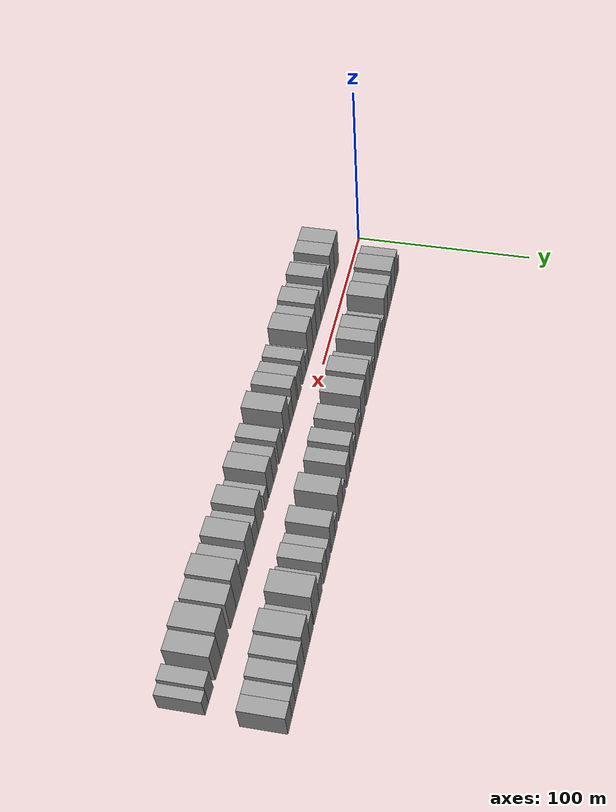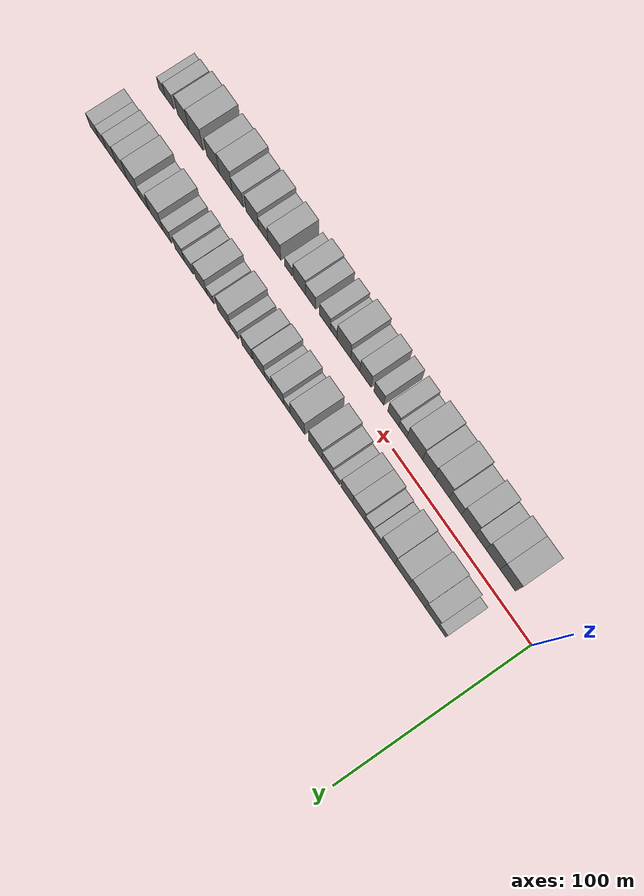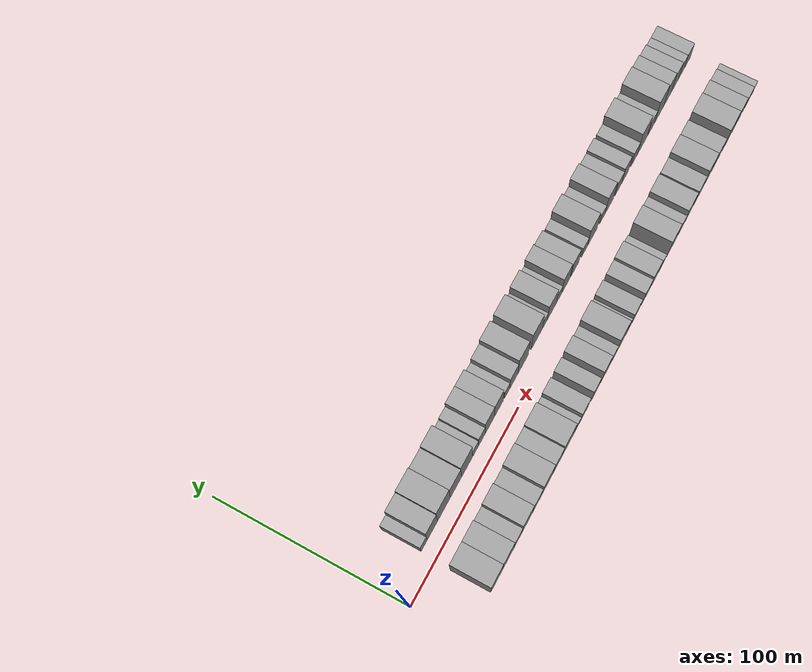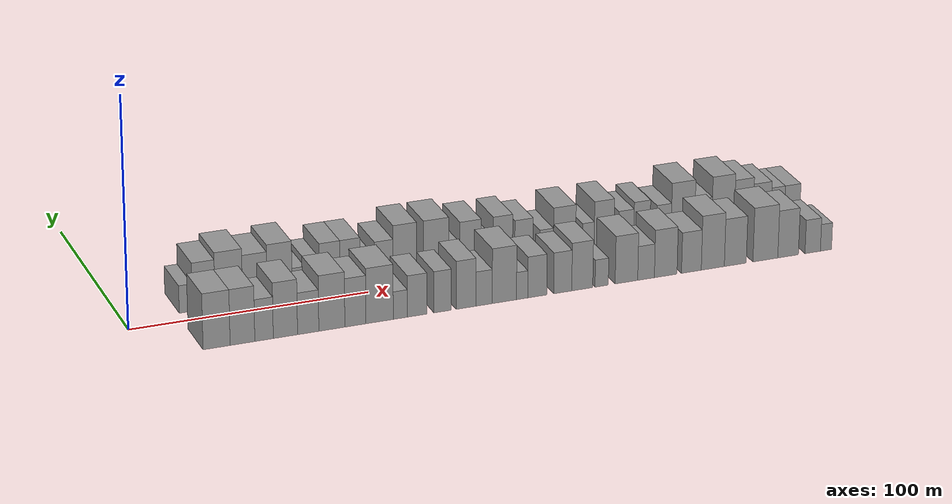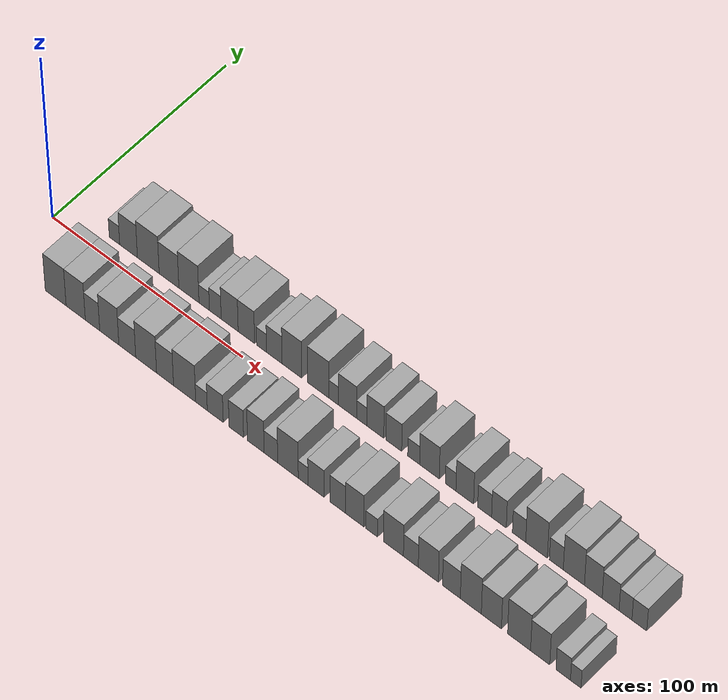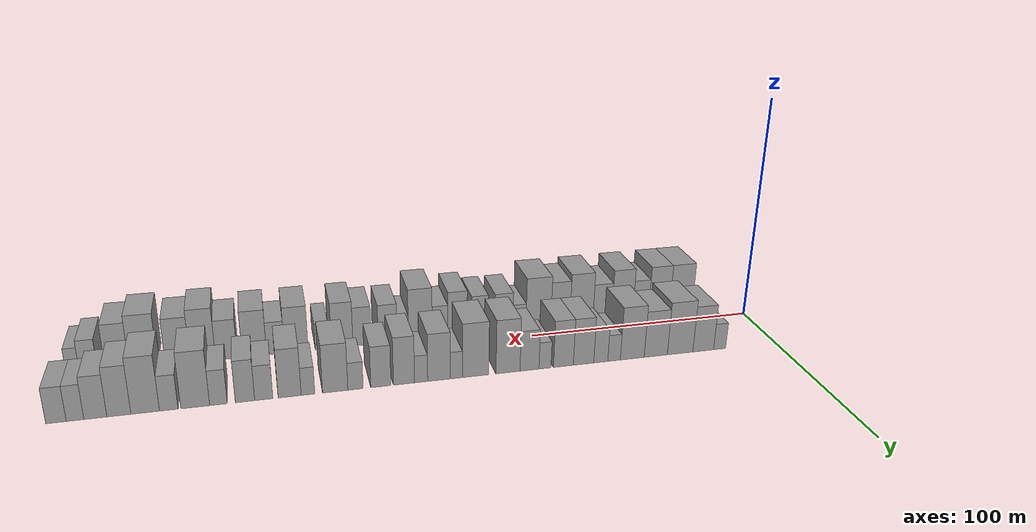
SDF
<sdf version="1.6">
 <world name="default">
  <scene>
   <sky><clouds><speed>12</speed></clouds></sky>
   <ambient>0.4 0.4 0.4 1</ambient>
   <background>0.7 0.7 0.7 1</background>
   <shadows>1</shadows>
  </scene>
  <gravity>0 0 -9.8066</gravity>
  <magnetic_field>6e-06 2.3e-05 -4.2e-05</magnetic_field>
  <physics default="0" name="default_physics" type="ode">
   <ode>
    <solver>
     <type>quick</type>
     <iters>10</iters>
     <sor>1.0</sor>
     <use_dynamic_moi_rescaling>0</use_dynamic_moi_rescaling>
    </solver>
    <constraints>
     <cfm>0</cfm>
     <erp>0.2</erp>
     <contact_max_correcting_vel>100</contact_max_correcting_vel>
     <contact_surface_layer>0.001</contact_surface_layer>
    </constraints>
   </ode>
   <max_step_size>0.004</max_step_size>
   <real_time_factor>1</real_time_factor>
   <real_time_update_rate>250</real_time_update_rate>
  </physics>
  <light name="sun" type="directional">
   <pose>0 0 10 0 0 0</pose>
   <diffuse>0.8 0.8 0.8 1</diffuse>
   <specular>0.2 0.2 0.2 1</specular>
   <attenuation>
    <range>1000</range>
    <constant>0.9</constant>
    <linear>0.01</linear>
    <quadratic>0.001</quadratic>
   </attenuation>
   <direction>-0.5 0.1 -0.9</direction>
  </light>
  <model name="building_1">
   <static>1</static>
   <pose>25.7663 17.5000 0 0.000000 0.000000 1.570796</pose>
   <link name="link">
    <pose>0 0 6.00 0 0 0</pose>
    <collision name="collision"><geometry><box><size>20.0000 5.5326 12.0000</size></box></geometry></collision>
    <visual name="visual">
     <cast_shadows>0</cast_shadows>
     <geometry><box><size>20.0000 5.5326 12.0000</size></box></geometry>
     <material>
      <script>
       <uri>model://grey_wall/materials/scripts</uri>
       <uri>model://grey_wall/materials/textures</uri>
       <name>vrc/grey_wall</name>
      </script>
     </material>
    </visual>
   </link>
  </model>
  <model name="building_2">
   <static>1</static>
   <pose>33.2285 17.5000 0 0.000000 0.000000 1.570796</pose>
   <link name="link">
    <pose>0 0 10.50 0 0 0</pose>
    <collision name="collision"><geometry><box><size>20.0000 9.3917 21.0000</size></box></geometry></collision>
    <visual name="visual">
     <cast_shadows>0</cast_shadows>
     <geometry><box><size>20.0000 9.3917 21.0000</size></box></geometry>
     <material>
      <script>
       <uri>model://grey_wall/materials/scripts</uri>
       <uri>model://grey_wall/materials/textures</uri>
       <name>vrc/grey_wall</name>
      </script>
     </material>
    </visual>
   </link>
  </model>
  <model name="building_3">
   <static>1</static>
   <pose>43.6624 17.5000 0 0.000000 0.000000 1.570796</pose>
   <link name="link">
    <pose>0 0 12.00 0 0 0</pose>
    <collision name="collision"><geometry><box><size>20.0000 11.4763 24.0000</size></box></geometry></collision>
    <visual name="visual">
     <cast_shadows>0</cast_shadows>
     <geometry><box><size>20.0000 11.4763 24.0000</size></box></geometry>
     <material>
      <script>
       <uri>model://grey_wall/materials/scripts</uri>
       <uri>model://grey_wall/materials/textures</uri>
       <name>vrc/grey_wall</name>
      </script>
     </material>
    </visual>
   </link>
  </model>
  <model name="building_4">
   <static>1</static>
   <pose>54.5716 17.5000 0 0.000000 0.000000 1.570796</pose>
   <link name="link">
    <pose>0 0 10.50 0 0 0</pose>
    <collision name="collision"><geometry><box><size>20.0000 10.3420 21.0000</size></box></geometry></collision>
    <visual name="visual">
     <cast_shadows>0</cast_shadows>
     <geometry><box><size>20.0000 10.3420 21.0000</size></box></geometry>
     <material>
      <script>
       <uri>model://grey_wall/materials/scripts</uri>
       <uri>model://grey_wall/materials/textures</uri>
       <name>vrc/grey_wall</name>
      </script>
     </material>
    </visual>
   </link>
  </model>
  <model name="building_5">
   <static>1</static>
   <pose>65.0134 17.5000 0 0.000000 0.000000 1.570796</pose>
   <link name="link">
    <pose>0 0 12.00 0 0 0</pose>
    <collision name="collision"><geometry><box><size>20.0000 10.5416 24.0000</size></box></geometry></collision>
    <visual name="visual">
     <cast_shadows>0</cast_shadows>
     <geometry><box><size>20.0000 10.5416 24.0000</size></box></geometry>
     <material>
      <script>
       <uri>model://grey_wall/materials/scripts</uri>
       <uri>model://grey_wall/materials/textures</uri>
       <name>vrc/grey_wall</name>
      </script>
     </material>
    </visual>
   </link>
  </model>
  <model name="building_6">
   <static>1</static>
   <pose>73.0153 17.5000 0 0.000000 0.000000 1.570796</pose>
   <link name="link">
    <pose>0 0 6.00 0 0 0</pose>
    <collision name="collision"><geometry><box><size>20.0000 5.4623 12.0000</size></box></geometry></collision>
    <visual name="visual">
     <cast_shadows>0</cast_shadows>
     <geometry><box><size>20.0000 5.4623 12.0000</size></box></geometry>
     <material>
      <script>
       <uri>model://grey_wall/materials/scripts</uri>
       <uri>model://grey_wall/materials/textures</uri>
       <name>vrc/grey_wall</name>
      </script>
     </material>
    </visual>
   </link>
  </model>
  <model name="building_7">
   <static>1</static>
   <pose>78.8042 17.5000 0 0.000000 0.000000 1.570796</pose>
   <link name="link">
    <pose>0 0 7.50 0 0 0</pose>
    <collision name="collision"><geometry><box><size>20.0000 6.1155 15.0000</size></box></geometry></collision>
    <visual name="visual">
     <cast_shadows>0</cast_shadows>
     <geometry><box><size>20.0000 6.1155 15.0000</size></box></geometry>
     <material>
      <script>
       <uri>model://grey_wall/materials/scripts</uri>
       <uri>model://grey_wall/materials/textures</uri>
       <name>vrc/grey_wall</name>
      </script>
     </material>
    </visual>
   </link>
  </model>
  <model name="building_8">
   <static>1</static>
   <pose>86.2754 17.5000 0 0.000000 0.000000 1.570796</pose>
   <link name="link">
    <pose>0 0 10.50 0 0 0</pose>
    <collision name="collision"><geometry><box><size>20.0000 8.8268 21.0000</size></box></geometry></collision>
    <visual name="visual">
     <cast_shadows>0</cast_shadows>
     <geometry><box><size>20.0000 8.8268 21.0000</size></box></geometry>
     <material>
      <script>
       <uri>model://grey_wall/materials/scripts</uri>
       <uri>model://grey_wall/materials/textures</uri>
       <name>vrc/grey_wall</name>
      </script>
     </material>
    </visual>
   </link>
  </model>
  <model name="building_9">
   <static>1</static>
   <pose>94.9428 17.5000 0 0.000000 0.000000 1.570796</pose>
   <link name="link">
    <pose>0 0 10.50 0 0 0</pose>
    <collision name="collision"><geometry><box><size>20.0000 8.5081 21.0000</size></box></geometry></collision>
    <visual name="visual">
     <cast_shadows>0</cast_shadows>
     <geometry><box><size>20.0000 8.5081 21.0000</size></box></geometry>
     <material>
      <script>
       <uri>model://grey_wall/materials/scripts</uri>
       <uri>model://grey_wall/materials/textures</uri>
       <name>vrc/grey_wall</name>
      </script>
     </material>
    </visual>
   </link>
  </model>
  <model name="building_10">
   <static>1</static>
   <pose>102.7801 17.5000 0 0.000000 0.000000 1.570796</pose>
   <link name="link">
    <pose>0 0 6.00 0 0 0</pose>
    <collision name="collision"><geometry><box><size>20.0000 5.1664 12.0000</size></box></geometry></collision>
    <visual name="visual">
     <cast_shadows>0</cast_shadows>
     <geometry><box><size>20.0000 5.1664 12.0000</size></box></geometry>
     <material>
      <script>
       <uri>model://grey_wall/materials/scripts</uri>
       <uri>model://grey_wall/materials/textures</uri>
       <name>vrc/grey_wall</name>
      </script>
     </material>
    </visual>
   </link>
  </model>
  <model name="building_11">
   <static>1</static>
   <pose>109.3656 17.5000 0 0.000000 0.000000 1.570796</pose>
   <link name="link">
    <pose>0 0 9.00 0 0 0</pose>
    <collision name="collision"><geometry><box><size>20.0000 8.0046 18.0000</size></box></geometry></collision>
    <visual name="visual">
     <cast_shadows>0</cast_shadows>
     <geometry><box><size>20.0000 8.0046 18.0000</size></box></geometry>
     <material>
      <script>
       <uri>model://grey_wall/materials/scripts</uri>
       <uri>model://grey_wall/materials/textures</uri>
       <name>vrc/grey_wall</name>
      </script>
     </material>
    </visual>
   </link>
  </model>
  <model name="building_12">
   <static>1</static>
   <pose>118.4052 17.5000 0 0.000000 0.000000 1.570796</pose>
   <link name="link">
    <pose>0 0 12.00 0 0 0</pose>
    <collision name="collision"><geometry><box><size>20.0000 10.0746 24.0000</size></box></geometry></collision>
    <visual name="visual">
     <cast_shadows>0</cast_shadows>
     <geometry><box><size>20.0000 10.0746 24.0000</size></box></geometry>
     <material>
      <script>
       <uri>model://grey_wall/materials/scripts</uri>
       <uri>model://grey_wall/materials/textures</uri>
       <name>vrc/grey_wall</name>
      </script>
     </material>
    </visual>
   </link>
  </model>
  <model name="building_13">
   <static>1</static>
   <pose>131.8891 17.5000 0 0.000000 0.000000 1.570796</pose>
   <link name="link">
    <pose>0 0 12.00 0 0 0</pose>
    <collision name="collision"><geometry><box><size>20.0000 10.8932 24.0000</size></box></geometry></collision>
    <visual name="visual">
     <cast_shadows>0</cast_shadows>
     <geometry><box><size>20.0000 10.8932 24.0000</size></box></geometry>
     <material>
      <script>
       <uri>model://grey_wall/materials/scripts</uri>
       <uri>model://grey_wall/materials/textures</uri>
       <name>vrc/grey_wall</name>
      </script>
     </material>
    </visual>
   </link>
  </model>
  <model name="building_14">
   <static>1</static>
   <pose>139.7885 17.5000 0 0.000000 0.000000 1.570796</pose>
   <link name="link">
    <pose>0 0 6.00 0 0 0</pose>
    <collision name="collision"><geometry><box><size>20.0000 4.9057 12.0000</size></box></geometry></collision>
    <visual name="visual">
     <cast_shadows>0</cast_shadows>
     <geometry><box><size>20.0000 4.9057 12.0000</size></box></geometry>
     <material>
      <script>
       <uri>model://grey_wall/materials/scripts</uri>
       <uri>model://grey_wall/materials/textures</uri>
       <name>vrc/grey_wall</name>
      </script>
     </material>
    </visual>
   </link>
  </model>
  <model name="building_15">
   <static>1</static>
   <pose>146.8472 17.5000 0 0.000000 0.000000 1.570796</pose>
   <link name="link">
    <pose>0 0 10.50 0 0 0</pose>
    <collision name="collision"><geometry><box><size>20.0000 9.2116 21.0000</size></box></geometry></collision>
    <visual name="visual">
     <cast_shadows>0</cast_shadows>
     <geometry><box><size>20.0000 9.2116 21.0000</size></box></geometry>
     <material>
      <script>
       <uri>model://grey_wall/materials/scripts</uri>
       <uri>model://grey_wall/materials/textures</uri>
       <name>vrc/grey_wall</name>
      </script>
     </material>
    </visual>
   </link>
  </model>
  <model name="building_16">
   <static>1</static>
   <pose>154.1095 17.5000 0 0.000000 0.000000 1.570796</pose>
   <link name="link">
    <pose>0 0 6.00 0 0 0</pose>
    <collision name="collision"><geometry><box><size>20.0000 5.3130 12.0000</size></box></geometry></collision>
    <visual name="visual">
     <cast_shadows>0</cast_shadows>
     <geometry><box><size>20.0000 5.3130 12.0000</size></box></geometry>
     <material>
      <script>
       <uri>model://grey_wall/materials/scripts</uri>
       <uri>model://grey_wall/materials/textures</uri>
       <name>vrc/grey_wall</name>
      </script>
     </material>
    </visual>
   </link>
  </model>
  <model name="building_17">
   <static>1</static>
   <pose>160.9851 17.5000 0 0.000000 0.000000 1.570796</pose>
   <link name="link">
    <pose>0 0 10.50 0 0 0</pose>
    <collision name="collision"><geometry><box><size>20.0000 8.4382 21.0000</size></box></geometry></collision>
    <visual name="visual">
     <cast_shadows>0</cast_shadows>
     <geometry><box><size>20.0000 8.4382 21.0000</size></box></geometry>
     <material>
      <script>
       <uri>model://grey_wall/materials/scripts</uri>
       <uri>model://grey_wall/materials/textures</uri>
       <name>vrc/grey_wall</name>
      </script>
     </material>
    </visual>
   </link>
  </model>
  <model name="building_18">
   <static>1</static>
   <pose>170.2127 17.5000 0 0.000000 0.000000 1.570796</pose>
   <link name="link">
    <pose>0 0 9.00 0 0 0</pose>
    <collision name="collision"><geometry><box><size>20.0000 8.0170 18.0000</size></box></geometry></collision>
    <visual name="visual">
     <cast_shadows>0</cast_shadows>
     <geometry><box><size>20.0000 8.0170 18.0000</size></box></geometry>
     <material>
      <script>
       <uri>model://grey_wall/materials/scripts</uri>
       <uri>model://grey_wall/materials/textures</uri>
       <name>vrc/grey_wall</name>
      </script>
     </material>
    </visual>
   </link>
  </model>
  <model name="building_19">
   <static>1</static>
   <pose>180.2199 17.5000 0 0.000000 0.000000 1.570796</pose>
   <link name="link">
    <pose>0 0 6.00 0 0 0</pose>
    <collision name="collision"><geometry><box><size>20.0000 5.9976 12.0000</size></box></geometry></collision>
    <visual name="visual">
     <cast_shadows>0</cast_shadows>
     <geometry><box><size>20.0000 5.9976 12.0000</size></box></geometry>
     <material>
      <script>
       <uri>model://grey_wall/materials/scripts</uri>
       <uri>model://grey_wall/materials/textures</uri>
       <name>vrc/grey_wall</name>
      </script>
     </material>
    </visual>
   </link>
  </model>
  <model name="building_20">
   <static>1</static>
   <pose>188.1615 17.5000 0 0.000000 0.000000 1.570796</pose>
   <link name="link">
    <pose>0 0 10.50 0 0 0</pose>
    <collision name="collision"><geometry><box><size>20.0000 9.8854 21.0000</size></box></geometry></collision>
    <visual name="visual">
     <cast_shadows>0</cast_shadows>
     <geometry><box><size>20.0000 9.8854 21.0000</size></box></geometry>
     <material>
      <script>
       <uri>model://grey_wall/materials/scripts</uri>
       <uri>model://grey_wall/materials/textures</uri>
       <name>vrc/grey_wall</name>
      </script>
     </material>
    </visual>
   </link>
  </model>
  <model name="building_21">
   <static>1</static>
   <pose>198.7292 17.5000 0 0.000000 0.000000 1.570796</pose>
   <link name="link">
    <pose>0 0 6.00 0 0 0</pose>
    <collision name="collision"><geometry><box><size>20.0000 5.2500 12.0000</size></box></geometry></collision>
    <visual name="visual">
     <cast_shadows>0</cast_shadows>
     <geometry><box><size>20.0000 5.2500 12.0000</size></box></geometry>
     <material>
      <script>
       <uri>model://grey_wall/materials/scripts</uri>
       <uri>model://grey_wall/materials/textures</uri>
       <name>vrc/grey_wall</name>
      </script>
     </material>
    </visual>
   </link>
  </model>
  <model name="building_22">
   <static>1</static>
   <pose>205.7649 17.5000 0 0.000000 0.000000 1.570796</pose>
   <link name="link">
    <pose>0 0 10.50 0 0 0</pose>
    <collision name="collision"><geometry><box><size>20.0000 8.8215 21.0000</size></box></geometry></collision>
    <visual name="visual">
     <cast_shadows>0</cast_shadows>
     <geometry><box><size>20.0000 8.8215 21.0000</size></box></geometry>
     <material>
      <script>
       <uri>model://grey_wall/materials/scripts</uri>
       <uri>model://grey_wall/materials/textures</uri>
       <name>vrc/grey_wall</name>
      </script>
     </material>
    </visual>
   </link>
  </model>
  <model name="building_23">
   <static>1</static>
   <pose>215.6237 17.5000 0 0.000000 0.000000 1.570796</pose>
   <link name="link">
    <pose>0 0 7.50 0 0 0</pose>
    <collision name="collision"><geometry><box><size>20.0000 6.8962 15.0000</size></box></geometry></collision>
    <visual name="visual">
     <cast_shadows>0</cast_shadows>
     <geometry><box><size>20.0000 6.8962 15.0000</size></box></geometry>
     <material>
      <script>
       <uri>model://grey_wall/materials/scripts</uri>
       <uri>model://grey_wall/materials/textures</uri>
       <name>vrc/grey_wall</name>
      </script>
     </material>
    </visual>
   </link>
  </model>
  <model name="building_24">
   <static>1</static>
   <pose>222.7082 17.5000 0 0.000000 0.000000 1.570796</pose>
   <link name="link">
    <pose>0 0 9.00 0 0 0</pose>
    <collision name="collision"><geometry><box><size>20.0000 7.2728 18.0000</size></box></geometry></collision>
    <visual name="visual">
     <cast_shadows>0</cast_shadows>
     <geometry><box><size>20.0000 7.2728 18.0000</size></box></geometry>
     <material>
      <script>
       <uri>model://grey_wall/materials/scripts</uri>
       <uri>model://grey_wall/materials/textures</uri>
       <name>vrc/grey_wall</name>
      </script>
     </material>
    </visual>
   </link>
  </model>
  <model name="building_25">
   <static>1</static>
   <pose>232.6329 17.5000 0 0.000000 0.000000 1.570796</pose>
   <link name="link">
    <pose>0 0 7.50 0 0 0</pose>
    <collision name="collision"><geometry><box><size>20.0000 6.5765 15.0000</size></box></geometry></collision>
    <visual name="visual">
     <cast_shadows>0</cast_shadows>
     <geometry><box><size>20.0000 6.5765 15.0000</size></box></geometry>
     <material>
      <script>
       <uri>model://grey_wall/materials/scripts</uri>
       <uri>model://grey_wall/materials/textures</uri>
       <name>vrc/grey_wall</name>
      </script>
     </material>
    </visual>
   </link>
  </model>
  <model name="building_26">
   <static>1</static>
   <pose>241.2340 17.5000 0 0.000000 0.000000 1.570796</pose>
   <link name="link">
    <pose>0 0 12.00 0 0 0</pose>
    <collision name="collision"><geometry><box><size>20.0000 10.6257 24.0000</size></box></geometry></collision>
    <visual name="visual">
     <cast_shadows>0</cast_shadows>
     <geometry><box><size>20.0000 10.6257 24.0000</size></box></geometry>
     <material>
      <script>
       <uri>model://grey_wall/materials/scripts</uri>
       <uri>model://grey_wall/materials/textures</uri>
       <name>vrc/grey_wall</name>
      </script>
     </material>
    </visual>
   </link>
  </model>
  <model name="building_27">
   <static>1</static>
   <pose>250.9435 17.5000 0 0.000000 0.000000 1.570796</pose>
   <link name="link">
    <pose>0 0 7.50 0 0 0</pose>
    <collision name="collision"><geometry><box><size>20.0000 6.7933 15.0000</size></box></geometry></collision>
    <visual name="visual">
     <cast_shadows>0</cast_shadows>
     <geometry><box><size>20.0000 6.7933 15.0000</size></box></geometry>
     <material>
      <script>
       <uri>model://grey_wall/materials/scripts</uri>
       <uri>model://grey_wall/materials/textures</uri>
       <name>vrc/grey_wall</name>
      </script>
     </material>
    </visual>
   </link>
  </model>
  <model name="building_28">
   <static>1</static>
   <pose>259.5029 17.5000 0 0.000000 0.000000 1.570796</pose>
   <link name="link">
    <pose>0 0 12.00 0 0 0</pose>
    <collision name="collision"><geometry><box><size>20.0000 10.3254 24.0000</size></box></geometry></collision>
    <visual name="visual">
     <cast_shadows>0</cast_shadows>
     <geometry><box><size>20.0000 10.3254 24.0000</size></box></geometry>
     <material>
      <script>
       <uri>model://grey_wall/materials/scripts</uri>
       <uri>model://grey_wall/materials/textures</uri>
       <name>vrc/grey_wall</name>
      </script>
     </material>
    </visual>
   </link>
  </model>
  <model name="building_29">
   <static>1</static>
   <pose>268.9678 17.5000 0 0.000000 0.000000 1.570796</pose>
   <link name="link">
    <pose>0 0 10.50 0 0 0</pose>
    <collision name="collision"><geometry><box><size>20.0000 8.6045 21.0000</size></box></geometry></collision>
    <visual name="visual">
     <cast_shadows>0</cast_shadows>
     <geometry><box><size>20.0000 8.6045 21.0000</size></box></geometry>
     <material>
      <script>
       <uri>model://grey_wall/materials/scripts</uri>
       <uri>model://grey_wall/materials/textures</uri>
       <name>vrc/grey_wall</name>
      </script>
     </material>
    </visual>
   </link>
  </model>
  <model name="building_30">
   <static>1</static>
   <pose>277.3589 17.5000 0 0.000000 0.000000 1.570796</pose>
   <link name="link">
    <pose>0 0 9.00 0 0 0</pose>
    <collision name="collision"><geometry><box><size>20.0000 8.1776 18.0000</size></box></geometry></collision>
    <visual name="visual">
     <cast_shadows>0</cast_shadows>
     <geometry><box><size>20.0000 8.1776 18.0000</size></box></geometry>
     <material>
      <script>
       <uri>model://grey_wall/materials/scripts</uri>
       <uri>model://grey_wall/materials/textures</uri>
       <name>vrc/grey_wall</name>
      </script>
     </material>
    </visual>
   </link>
  </model>
  <model name="building_31">
   <static>1</static>
   <pose>284.5624 17.5000 0 0.000000 0.000000 1.570796</pose>
   <link name="link">
    <pose>0 0 7.50 0 0 0</pose>
    <collision name="collision"><geometry><box><size>20.0000 6.2294 15.0000</size></box></geometry></collision>
    <visual name="visual">
     <cast_shadows>0</cast_shadows>
     <geometry><box><size>20.0000 6.2294 15.0000</size></box></geometry>
     <material>
      <script>
       <uri>model://grey_wall/materials/scripts</uri>
       <uri>model://grey_wall/materials/textures</uri>
       <name>vrc/grey_wall</name>
      </script>
     </material>
    </visual>
   </link>
  </model>
  <model name="building_32">
   <static>1</static>
   <pose>291.2573 17.5000 0 0.000000 0.000000 1.570796</pose>
   <link name="link">
    <pose>0 0 7.50 0 0 0</pose>
    <collision name="collision"><geometry><box><size>20.0000 7.1604 15.0000</size></box></geometry></collision>
    <visual name="visual">
     <cast_shadows>0</cast_shadows>
     <geometry><box><size>20.0000 7.1604 15.0000</size></box></geometry>
     <material>
      <script>
       <uri>model://grey_wall/materials/scripts</uri>
       <uri>model://grey_wall/materials/textures</uri>
       <name>vrc/grey_wall</name>
      </script>
     </material>
    </visual>
   </link>
  </model>
  <model name="building_33">
   <static>1</static>
   <pose>27.5163 -17.5000 0 0.000000 0.000000 1.570796</pose>
   <link name="link">
    <pose>0 0 12.00 0 0 0</pose>
    <collision name="collision"><geometry><box><size>20.0000 11.0327 24.0000</size></box></geometry></collision>
    <visual name="visual">
     <cast_shadows>0</cast_shadows>
     <geometry><box><size>20.0000 11.0327 24.0000</size></box></geometry>
     <material>
      <script>
       <uri>model://grey_wall/materials/scripts</uri>
       <uri>model://grey_wall/materials/textures</uri>
       <name>vrc/grey_wall</name>
      </script>
     </material>
    </visual>
   </link>
  </model>
  <model name="building_34">
   <static>1</static>
   <pose>38.0993 -17.5000 0 0.000000 0.000000 1.570796</pose>
   <link name="link">
    <pose>0 0 12.00 0 0 0</pose>
    <collision name="collision"><geometry><box><size>20.0000 10.1332 24.0000</size></box></geometry></collision>
    <visual name="visual">
     <cast_shadows>0</cast_shadows>
     <geometry><box><size>20.0000 10.1332 24.0000</size></box></geometry>
     <material>
      <script>
       <uri>model://grey_wall/materials/scripts</uri>
       <uri>model://grey_wall/materials/textures</uri>
       <name>vrc/grey_wall</name>
      </script>
     </material>
    </visual>
   </link>
  </model>
  <model name="building_35">
   <static>1</static>
   <pose>46.9621 -17.5000 0 0.000000 0.000000 1.570796</pose>
   <link name="link">
    <pose>0 0 9.00 0 0 0</pose>
    <collision name="collision"><geometry><box><size>20.0000 7.5925 18.0000</size></box></geometry></collision>
    <visual name="visual">
     <cast_shadows>0</cast_shadows>
     <geometry><box><size>20.0000 7.5925 18.0000</size></box></geometry>
     <material>
      <script>
       <uri>model://grey_wall/materials/scripts</uri>
       <uri>model://grey_wall/materials/textures</uri>
       <name>vrc/grey_wall</name>
      </script>
     </material>
    </visual>
   </link>
  </model>
  <model name="building_36">
   <static>1</static>
   <pose>55.7701 -17.5000 0 0.000000 0.000000 1.570796</pose>
   <link name="link">
    <pose>0 0 12.00 0 0 0</pose>
    <collision name="collision"><geometry><box><size>20.0000 10.0235 24.0000</size></box></geometry></collision>
    <visual name="visual">
     <cast_shadows>0</cast_shadows>
     <geometry><box><size>20.0000 10.0235 24.0000</size></box></geometry>
     <material>
      <script>
       <uri>model://grey_wall/materials/scripts</uri>
       <uri>model://grey_wall/materials/textures</uri>
       <name>vrc/grey_wall</name>
      </script>
     </material>
    </visual>
   </link>
  </model>
  <model name="building_37">
   <static>1</static>
   <pose>65.1954 -17.5000 0 0.000000 0.000000 1.570796</pose>
   <link name="link">
    <pose>0 0 9.00 0 0 0</pose>
    <collision name="collision"><geometry><box><size>20.0000 8.8270 18.0000</size></box></geometry></collision>
    <visual name="visual">
     <cast_shadows>0</cast_shadows>
     <geometry><box><size>20.0000 8.8270 18.0000</size></box></geometry>
     <material>
      <script>
       <uri>model://grey_wall/materials/scripts</uri>
       <uri>model://grey_wall/materials/textures</uri>
       <name>vrc/grey_wall</name>
      </script>
     </material>
    </visual>
   </link>
  </model>
  <model name="building_38">
   <static>1</static>
   <pose>75.0274 -17.5000 0 0.000000 0.000000 1.570796</pose>
   <link name="link">
    <pose>0 0 12.00 0 0 0</pose>
    <collision name="collision"><geometry><box><size>20.0000 10.8371 24.0000</size></box></geometry></collision>
    <visual name="visual">
     <cast_shadows>0</cast_shadows>
     <geometry><box><size>20.0000 10.8371 24.0000</size></box></geometry>
     <material>
      <script>
       <uri>model://grey_wall/materials/scripts</uri>
       <uri>model://grey_wall/materials/textures</uri>
       <name>vrc/grey_wall</name>
      </script>
     </material>
    </visual>
   </link>
  </model>
  <model name="building_39">
   <static>1</static>
   <pose>84.8491 -17.5000 0 0.000000 0.000000 1.570796</pose>
   <link name="link">
    <pose>0 0 10.50 0 0 0</pose>
    <collision name="collision"><geometry><box><size>20.0000 8.8062 21.0000</size></box></geometry></collision>
    <visual name="visual">
     <cast_shadows>0</cast_shadows>
     <geometry><box><size>20.0000 8.8062 21.0000</size></box></geometry>
     <material>
      <script>
       <uri>model://grey_wall/materials/scripts</uri>
       <uri>model://grey_wall/materials/textures</uri>
       <name>vrc/grey_wall</name>
      </script>
     </material>
    </visual>
   </link>
  </model>
  <model name="building_40">
   <static>1</static>
   <pose>94.9940 -17.5000 0 0.000000 0.000000 1.570796</pose>
   <link name="link">
    <pose>0 0 12.00 0 0 0</pose>
    <collision name="collision"><geometry><box><size>20.0000 11.4836 24.0000</size></box></geometry></collision>
    <visual name="visual">
     <cast_shadows>0</cast_shadows>
     <geometry><box><size>20.0000 11.4836 24.0000</size></box></geometry>
     <material>
      <script>
       <uri>model://grey_wall/materials/scripts</uri>
       <uri>model://grey_wall/materials/textures</uri>
       <name>vrc/grey_wall</name>
      </script>
     </material>
    </visual>
   </link>
  </model>
  <model name="building_41">
   <static>1</static>
   <pose>103.7192 -17.5000 0 0.000000 0.000000 1.570796</pose>
   <link name="link">
    <pose>0 0 6.00 0 0 0</pose>
    <collision name="collision"><geometry><box><size>20.0000 5.9669 12.0000</size></box></geometry></collision>
    <visual name="visual">
     <cast_shadows>0</cast_shadows>
     <geometry><box><size>20.0000 5.9669 12.0000</size></box></geometry>
     <material>
      <script>
       <uri>model://grey_wall/materials/scripts</uri>
       <uri>model://grey_wall/materials/textures</uri>
       <name>vrc/grey_wall</name>
      </script>
     </material>
    </visual>
   </link>
  </model>
  <model name="building_42">
   <static>1</static>
   <pose>110.8125 -17.5000 0 0.000000 0.000000 1.570796</pose>
   <link name="link">
    <pose>0 0 9.00 0 0 0</pose>
    <collision name="collision"><geometry><box><size>20.0000 8.2195 18.0000</size></box></geometry></collision>
    <visual name="visual">
     <cast_shadows>0</cast_shadows>
     <geometry><box><size>20.0000 8.2195 18.0000</size></box></geometry>
     <material>
      <script>
       <uri>model://grey_wall/materials/scripts</uri>
       <uri>model://grey_wall/materials/textures</uri>
       <name>vrc/grey_wall</name>
      </script>
     </material>
    </visual>
   </link>
  </model>
  <model name="building_43">
   <static>1</static>
   <pose>121.6266 -17.5000 0 0.000000 0.000000 1.570796</pose>
   <link name="link">
    <pose>0 0 9.00 0 0 0</pose>
    <collision name="collision"><geometry><box><size>20.0000 7.4089 18.0000</size></box></geometry></collision>
    <visual name="visual">
     <cast_shadows>0</cast_shadows>
     <geometry><box><size>20.0000 7.4089 18.0000</size></box></geometry>
     <material>
      <script>
       <uri>model://grey_wall/materials/scripts</uri>
       <uri>model://grey_wall/materials/textures</uri>
       <name>vrc/grey_wall</name>
      </script>
     </material>
    </visual>
   </link>
  </model>
  <model name="building_44">
   <static>1</static>
   <pose>131.5839 -17.5000 0 0.000000 0.000000 1.570796</pose>
   <link name="link">
    <pose>0 0 10.50 0 0 0</pose>
    <collision name="collision"><geometry><box><size>20.0000 8.5056 21.0000</size></box></geometry></collision>
    <visual name="visual">
     <cast_shadows>0</cast_shadows>
     <geometry><box><size>20.0000 8.5056 21.0000</size></box></geometry>
     <material>
      <script>
       <uri>model://grey_wall/materials/scripts</uri>
       <uri>model://grey_wall/materials/textures</uri>
       <name>vrc/grey_wall</name>
      </script>
     </material>
    </visual>
   </link>
  </model>
  <model name="building_45">
   <static>1</static>
   <pose>139.2907 -17.5000 0 0.000000 0.000000 1.570796</pose>
   <link name="link">
    <pose>0 0 7.50 0 0 0</pose>
    <collision name="collision"><geometry><box><size>20.0000 6.9080 15.0000</size></box></geometry></collision>
    <visual name="visual">
     <cast_shadows>0</cast_shadows>
     <geometry><box><size>20.0000 6.9080 15.0000</size></box></geometry>
     <material>
      <script>
       <uri>model://grey_wall/materials/scripts</uri>
       <uri>model://grey_wall/materials/textures</uri>
       <name>vrc/grey_wall</name>
      </script>
     </material>
    </visual>
   </link>
  </model>
  <model name="building_46">
   <static>1</static>
   <pose>147.9553 -17.5000 0 0.000000 0.000000 1.570796</pose>
   <link name="link">
    <pose>0 0 12.00 0 0 0</pose>
    <collision name="collision"><geometry><box><size>20.0000 10.4210 24.0000</size></box></geometry></collision>
    <visual name="visual">
     <cast_shadows>0</cast_shadows>
     <geometry><box><size>20.0000 10.4210 24.0000</size></box></geometry>
     <material>
      <script>
       <uri>model://grey_wall/materials/scripts</uri>
       <uri>model://grey_wall/materials/textures</uri>
       <name>vrc/grey_wall</name>
      </script>
     </material>
    </visual>
   </link>
  </model>
  <model name="building_47">
   <static>1</static>
   <pose>155.6169 -17.5000 0 0.000000 0.000000 1.570796</pose>
   <link name="link">
    <pose>0 0 6.00 0 0 0</pose>
    <collision name="collision"><geometry><box><size>20.0000 4.9023 12.0000</size></box></geometry></collision>
    <visual name="visual">
     <cast_shadows>0</cast_shadows>
     <geometry><box><size>20.0000 4.9023 12.0000</size></box></geometry>
     <material>
      <script>
       <uri>model://grey_wall/materials/scripts</uri>
       <uri>model://grey_wall/materials/textures</uri>
       <name>vrc/grey_wall</name>
      </script>
     </material>
    </visual>
   </link>
  </model>
  <model name="building_48">
   <static>1</static>
   <pose>162.1531 -17.5000 0 0.000000 0.000000 1.570796</pose>
   <link name="link">
    <pose>0 0 9.00 0 0 0</pose>
    <collision name="collision"><geometry><box><size>20.0000 8.1699 18.0000</size></box></geometry></collision>
    <visual name="visual">
     <cast_shadows>0</cast_shadows>
     <geometry><box><size>20.0000 8.1699 18.0000</size></box></geometry>
     <material>
      <script>
       <uri>model://grey_wall/materials/scripts</uri>
       <uri>model://grey_wall/materials/textures</uri>
       <name>vrc/grey_wall</name>
      </script>
     </material>
    </visual>
   </link>
  </model>
  <model name="building_49">
   <static>1</static>
   <pose>173.1528 -17.5000 0 0.000000 0.000000 1.570796</pose>
   <link name="link">
    <pose>0 0 9.00 0 0 0</pose>
    <collision name="collision"><geometry><box><size>20.0000 7.8295 18.0000</size></box></geometry></collision>
    <visual name="visual">
     <cast_shadows>0</cast_shadows>
     <geometry><box><size>20.0000 7.8295 18.0000</size></box></geometry>
     <material>
      <script>
       <uri>model://grey_wall/materials/scripts</uri>
       <uri>model://grey_wall/materials/textures</uri>
       <name>vrc/grey_wall</name>
      </script>
     </material>
    </visual>
   </link>
  </model>
  <model name="building_50">
   <static>1</static>
   <pose>181.6432 -17.5000 0 0.000000 0.000000 1.570796</pose>
   <link name="link">
    <pose>0 0 10.50 0 0 0</pose>
    <collision name="collision"><geometry><box><size>20.0000 9.1513 21.0000</size></box></geometry></collision>
    <visual name="visual">
     <cast_shadows>0</cast_shadows>
     <geometry><box><size>20.0000 9.1513 21.0000</size></box></geometry>
     <material>
      <script>
       <uri>model://grey_wall/materials/scripts</uri>
       <uri>model://grey_wall/materials/textures</uri>
       <name>vrc/grey_wall</name>
      </script>
     </material>
    </visual>
   </link>
  </model>
  <model name="building_51">
   <static>1</static>
   <pose>190.1180 -17.5000 0 0.000000 0.000000 1.570796</pose>
   <link name="link">
    <pose>0 0 6.00 0 0 0</pose>
    <collision name="collision"><geometry><box><size>20.0000 5.7983 12.0000</size></box></geometry></collision>
    <visual name="visual">
     <cast_shadows>0</cast_shadows>
     <geometry><box><size>20.0000 5.7983 12.0000</size></box></geometry>
     <material>
      <script>
       <uri>model://grey_wall/materials/scripts</uri>
       <uri>model://grey_wall/materials/textures</uri>
       <name>vrc/grey_wall</name>
      </script>
     </material>
    </visual>
   </link>
  </model>
  <model name="building_52">
   <static>1</static>
   <pose>200.9670 -17.5000 0 0.000000 0.000000 1.570796</pose>
   <link name="link">
    <pose>0 0 10.50 0 0 0</pose>
    <collision name="collision"><geometry><box><size>20.0000 9.8997 21.0000</size></box></geometry></collision>
    <visual name="visual">
     <cast_shadows>0</cast_shadows>
     <geometry><box><size>20.0000 9.8997 21.0000</size></box></geometry>
     <material>
      <script>
       <uri>model://grey_wall/materials/scripts</uri>
       <uri>model://grey_wall/materials/textures</uri>
       <name>vrc/grey_wall</name>
      </script>
     </material>
    </visual>
   </link>
  </model>
  <model name="building_53">
   <static>1</static>
   <pose>209.5928 -17.5000 0 0.000000 0.000000 1.570796</pose>
   <link name="link">
    <pose>0 0 7.50 0 0 0</pose>
    <collision name="collision"><geometry><box><size>20.0000 7.3520 15.0000</size></box></geometry></collision>
    <visual name="visual">
     <cast_shadows>0</cast_shadows>
     <geometry><box><size>20.0000 7.3520 15.0000</size></box></geometry>
     <material>
      <script>
       <uri>model://grey_wall/materials/scripts</uri>
       <uri>model://grey_wall/materials/textures</uri>
       <name>vrc/grey_wall</name>
      </script>
     </material>
    </visual>
   </link>
  </model>
  <model name="building_54">
   <static>1</static>
   <pose>218.2626 -17.5000 0 0.000000 0.000000 1.570796</pose>
   <link name="link">
    <pose>0 0 10.50 0 0 0</pose>
    <collision name="collision"><geometry><box><size>20.0000 9.9875 21.0000</size></box></geometry></collision>
    <visual name="visual">
     <cast_shadows>0</cast_shadows>
     <geometry><box><size>20.0000 9.9875 21.0000</size></box></geometry>
     <material>
      <script>
       <uri>model://grey_wall/materials/scripts</uri>
       <uri>model://grey_wall/materials/textures</uri>
       <name>vrc/grey_wall</name>
      </script>
     </material>
    </visual>
   </link>
  </model>
  <model name="building_55">
   <static>1</static>
   <pose>229.6453 -17.5000 0 0.000000 0.000000 1.570796</pose>
   <link name="link">
    <pose>0 0 9.00 0 0 0</pose>
    <collision name="collision"><geometry><box><size>20.0000 8.7778 18.0000</size></box></geometry></collision>
    <visual name="visual">
     <cast_shadows>0</cast_shadows>
     <geometry><box><size>20.0000 8.7778 18.0000</size></box></geometry>
     <material>
      <script>
       <uri>model://grey_wall/materials/scripts</uri>
       <uri>model://grey_wall/materials/textures</uri>
       <name>vrc/grey_wall</name>
      </script>
     </material>
    </visual>
   </link>
  </model>
  <model name="building_56">
   <static>1</static>
   <pose>239.1777 -17.5000 0 0.000000 0.000000 1.570796</pose>
   <link name="link">
    <pose>0 0 12.00 0 0 0</pose>
    <collision name="collision"><geometry><box><size>20.0000 10.2870 24.0000</size></box></geometry></collision>
    <visual name="visual">
     <cast_shadows>0</cast_shadows>
     <geometry><box><size>20.0000 10.2870 24.0000</size></box></geometry>
     <material>
      <script>
       <uri>model://grey_wall/materials/scripts</uri>
       <uri>model://grey_wall/materials/textures</uri>
       <name>vrc/grey_wall</name>
      </script>
     </material>
    </visual>
   </link>
  </model>
  <model name="building_57">
   <static>1</static>
   <pose>249.2246 -17.5000 0 0.000000 0.000000 1.570796</pose>
   <link name="link">
    <pose>0 0 10.50 0 0 0</pose>
    <collision name="collision"><geometry><box><size>20.0000 9.8068 21.0000</size></box></geometry></collision>
    <visual name="visual">
     <cast_shadows>0</cast_shadows>
     <geometry><box><size>20.0000 9.8068 21.0000</size></box></geometry>
     <material>
      <script>
       <uri>model://grey_wall/materials/scripts</uri>
       <uri>model://grey_wall/materials/textures</uri>
       <name>vrc/grey_wall</name>
      </script>
     </material>
    </visual>
   </link>
  </model>
  <model name="building_58">
   <static>1</static>
   <pose>262.7201 -17.5000 0 0.000000 0.000000 1.570796</pose>
   <link name="link">
    <pose>0 0 12.00 0 0 0</pose>
    <collision name="collision"><geometry><box><size>20.0000 11.1844 24.0000</size></box></geometry></collision>
    <visual name="visual">
     <cast_shadows>0</cast_shadows>
     <geometry><box><size>20.0000 11.1844 24.0000</size></box></geometry>
     <material>
      <script>
       <uri>model://grey_wall/materials/scripts</uri>
       <uri>model://grey_wall/materials/textures</uri>
       <name>vrc/grey_wall</name>
      </script>
     </material>
    </visual>
   </link>
  </model>
  <model name="building_59">
   <static>1</static>
   <pose>272.9662 -17.5000 0 0.000000 0.000000 1.570796</pose>
   <link name="link">
    <pose>0 0 10.50 0 0 0</pose>
    <collision name="collision"><geometry><box><size>20.0000 9.3078 21.0000</size></box></geometry></collision>
    <visual name="visual">
     <cast_shadows>0</cast_shadows>
     <geometry><box><size>20.0000 9.3078 21.0000</size></box></geometry>
     <material>
      <script>
       <uri>model://grey_wall/materials/scripts</uri>
       <uri>model://grey_wall/materials/textures</uri>
       <name>vrc/grey_wall</name>
      </script>
     </material>
    </visual>
   </link>
  </model>
  <model name="building_60">
   <static>1</static>
   <pose>284.1089 -17.5000 0 0.000000 0.000000 1.570796</pose>
   <link name="link">
    <pose>0 0 7.50 0 0 0</pose>
    <collision name="collision"><geometry><box><size>20.0000 6.9774 15.0000</size></box></geometry></collision>
    <visual name="visual">
     <cast_shadows>0</cast_shadows>
     <geometry><box><size>20.0000 6.9774 15.0000</size></box></geometry>
     <material>
      <script>
       <uri>model://grey_wall/materials/scripts</uri>
       <uri>model://grey_wall/materials/textures</uri>
       <name>vrc/grey_wall</name>
      </script>
     </material>
    </visual>
   </link>
  </model>
  <model name="building_61">
   <static>1</static>
   <pose>290.1352 -17.5000 0 0.000000 0.000000 1.570796</pose>
   <link name="link">
    <pose>0 0 6.00 0 0 0</pose>
    <collision name="collision"><geometry><box><size>20.0000 5.0753 12.0000</size></box></geometry></collision>
    <visual name="visual">
     <cast_shadows>0</cast_shadows>
     <geometry><box><size>20.0000 5.0753 12.0000</size></box></geometry>
     <material>
      <script>
       <uri>model://grey_wall/materials/scripts</uri>
       <uri>model://grey_wall/materials/textures</uri>
       <name>vrc/grey_wall</name>
      </script>
     </material>
    </visual>
   </link>
  </model>
 </world>
</sdf>
